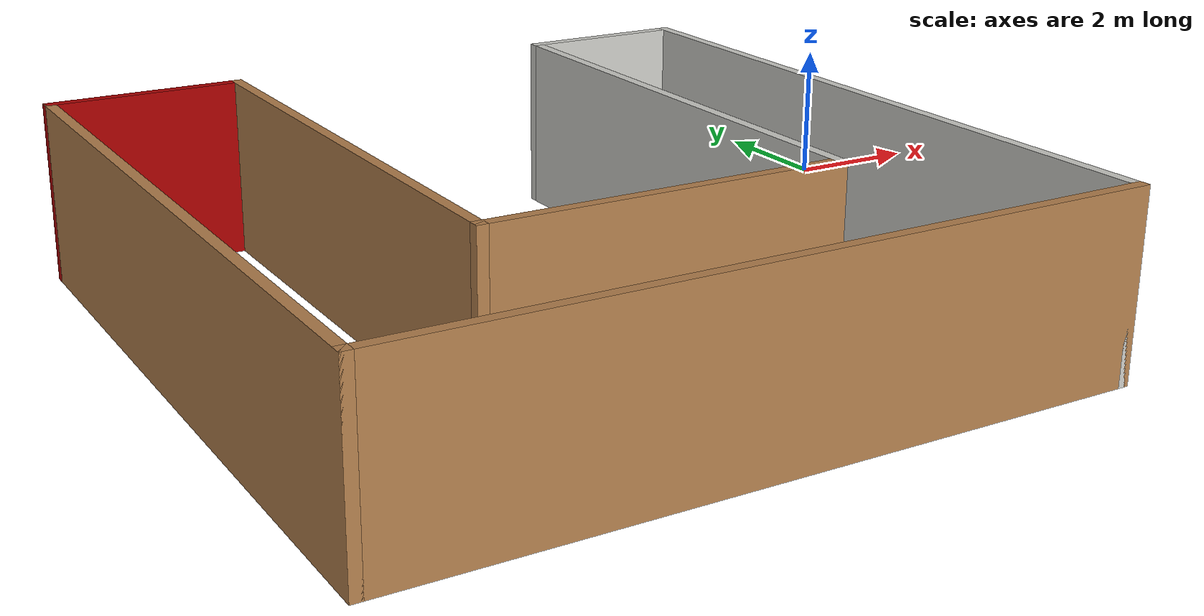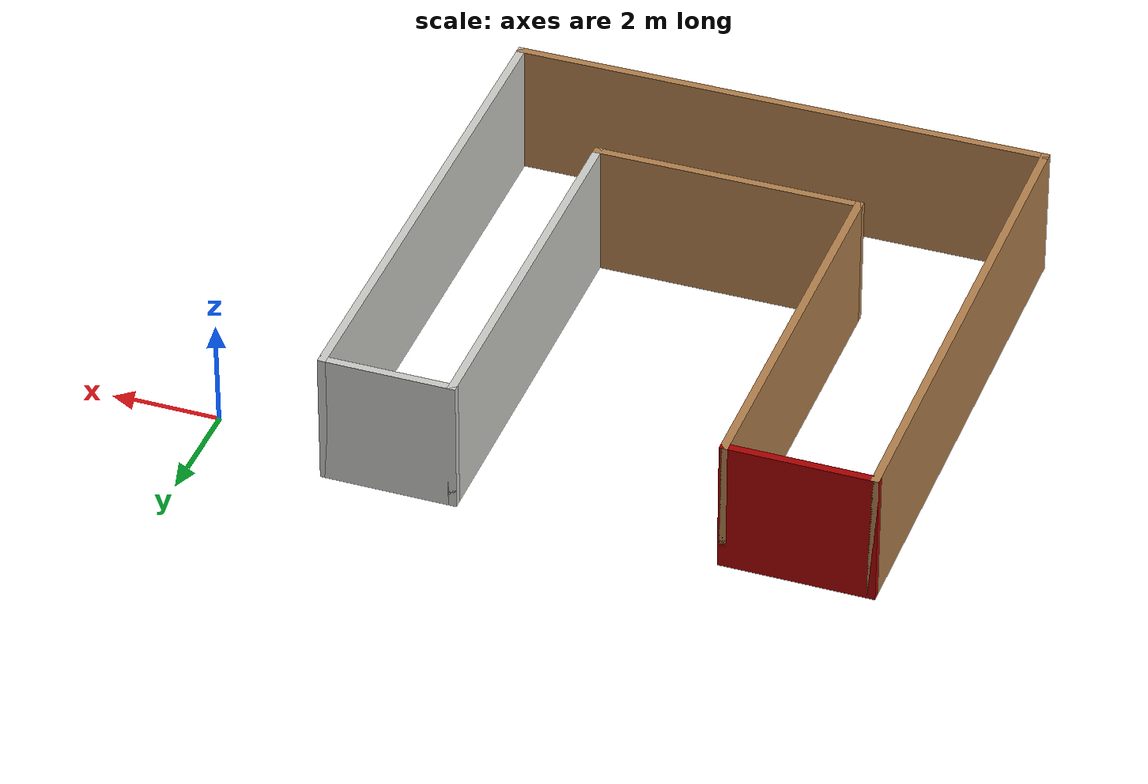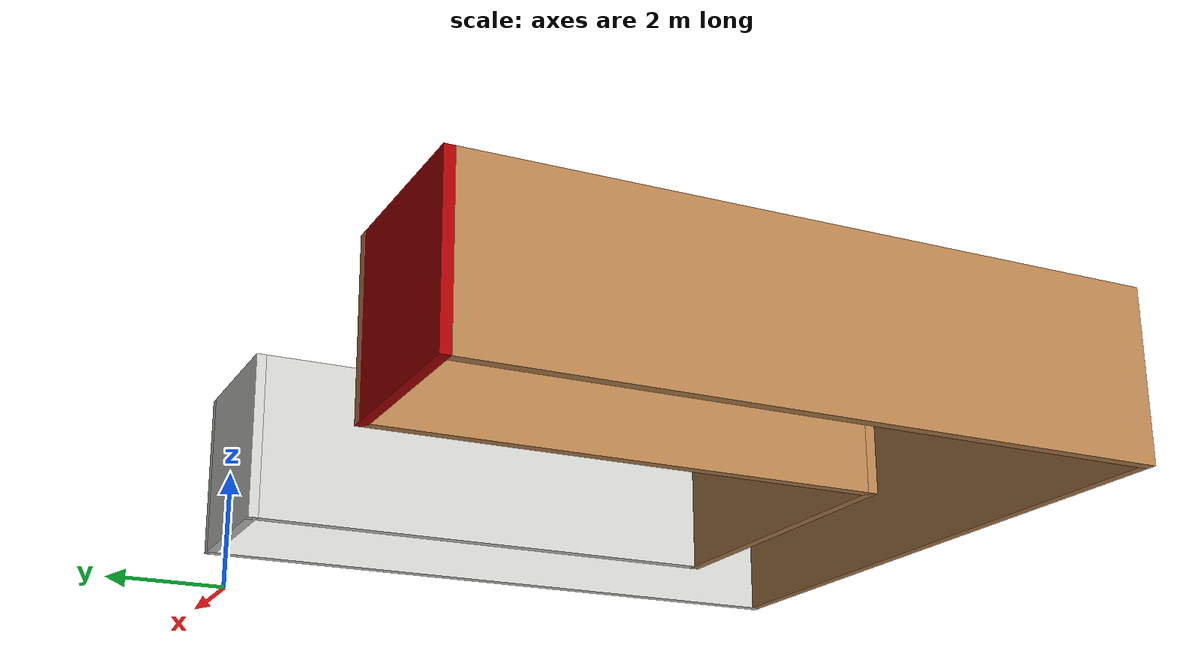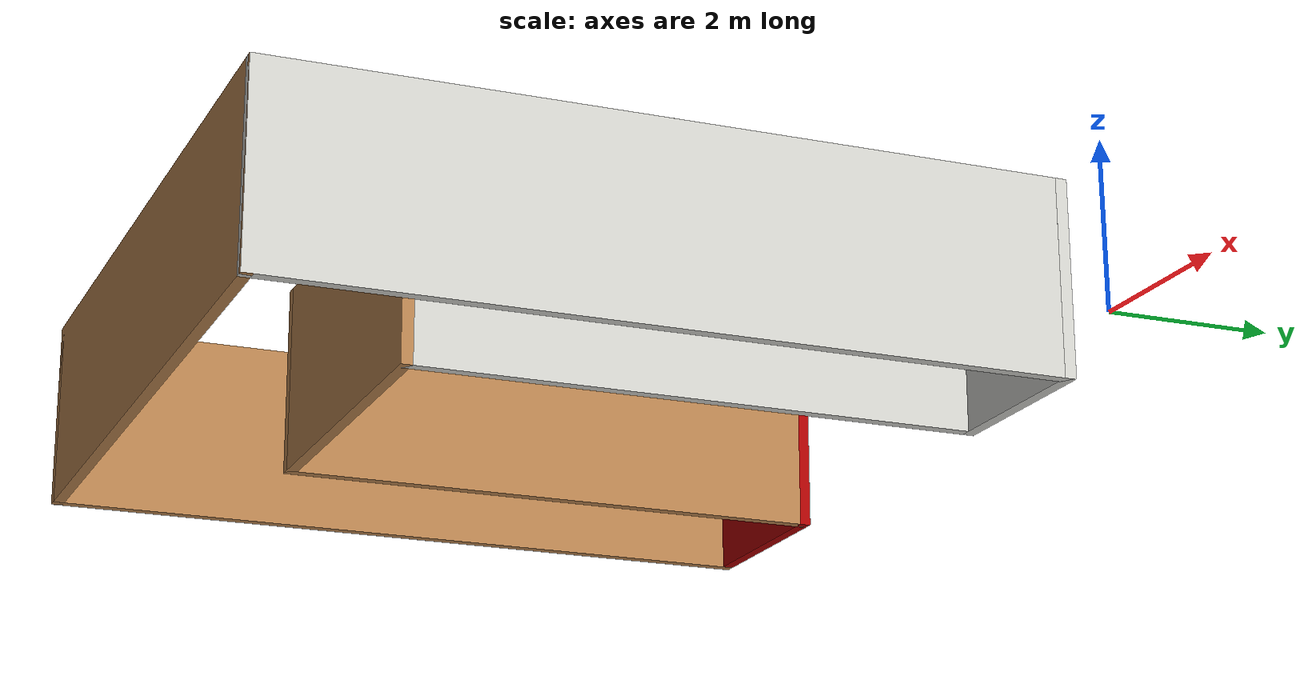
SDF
<?xml version='1.0'?>
<sdf version='1.6'>
  <model name='Mybuilding'>
    <pose frame=''>-7.24222 -4.08807 0 0 -0 0</pose>
    <link name='Wall_2'>
      <collision name='Wall_2_Collision'>
        <geometry>
          <box>
            <size>10 0.15 2.5</size>
          </box>
        </geometry>
        <pose frame=''>0 0 1.25 0 -0 0</pose>
      </collision>
      <visual name='Wall_2_Visual'>
        <pose frame=''>0 0 1.25 0 -0 0</pose>
        <geometry>
          <box>
            <size>10 0.15 2.5</size>
          </box>
        </geometry>
        <material>
          <script>
            <uri>file://media/materials/scripts/gazebo.material</uri>
            <name>Gazebo/Wood</name>
          </script>
          <ambient>0.666667 0 0 1</ambient>
        </material>
        <meta>
          <layer>0</layer>
        </meta>
      </visual>
      <pose frame=''>-4.925 0 0 0 0 -1.5708</pose>
    </link>
    <link name='Wall_3'>
      <collision name='Wall_3_Collision'>
        <geometry>
          <box>
            <size>10 0.15 2.5</size>
          </box>
        </geometry>
        <pose frame=''>0 0 1.25 0 -0 0</pose>
      </collision>
      <visual name='Wall_3_Visual'>
        <pose frame=''>0 0 1.25 0 -0 0</pose>
        <geometry>
          <box>
            <size>10 0.15 2.5</size>
          </box>
        </geometry>
        <material>
          <script>
            <uri>file://media/materials/scripts/gazebo.material</uri>
            <name>Gazebo/Wood</name>
          </script>
          <ambient>0 0 1 1</ambient>
        </material>
        <meta>
          <layer>0</layer>
        </meta>
      </visual>
      <pose frame=''>0 -4.925 0 0 -0 0</pose>
    </link>
    <link name='Wall_4'>
      <collision name='Wall_4_Collision'>
        <geometry>
          <box>
            <size>10 0.15 2.5</size>
          </box>
        </geometry>
        <pose frame=''>0 0 1.25 0 -0 0</pose>
      </collision>
      <visual name='Wall_4_Visual'>
        <pose frame=''>0 0 1.25 0 -0 0</pose>
        <geometry>
          <box>
            <size>10 0.15 2.5</size>
          </box>
        </geometry>
        <material>
          <script>
            <uri>file://media/materials/scripts/gazebo.material</uri>
            <name>Gazebo/CeilingTiled</name>
          </script>
          <ambient>0 0.666667 0 1</ambient>
        </material>
        <meta>
          <layer>0</layer>
        </meta>
      </visual>
      <pose frame=''>4.925 0 0 0 -0 1.5708</pose>
    </link>
    <link name='Wall_5'>
      <collision name='Wall_5_Collision'>
        <geometry>
          <box>
            <size>2.5 0.15 2.5</size>
          </box>
        </geometry>
        <pose frame=''>0 0 1.25 0 -0 0</pose>
      </collision>
      <visual name='Wall_5_Visual'>
        <pose frame=''>0 0 1.25 0 -0 0</pose>
        <geometry>
          <box>
            <size>2.5 0.15 2.5</size>
          </box>
        </geometry>
        <material>
          <script>
            <uri>file://media/materials/scripts/gazebo.material</uri>
            <name>Gazebo/CeilingTiled</name>
          </script>
          <ambient>0 0.666667 0 1</ambient>
        </material>
        <meta>
          <layer>0</layer>
        </meta>
      </visual>
      <pose frame=''>3.75 4.925 0 0 -0 3.14159</pose>
    </link>
    <link name='Wall_6'>
      <collision name='Wall_6_Collision'>
        <geometry>
          <box>
            <size>7.5 0.15 2.5</size>
          </box>
        </geometry>
        <pose frame=''>0 0 1.25 0 -0 0</pose>
      </collision>
      <visual name='Wall_6_Visual'>
        <pose frame=''>0 0 1.25 0 -0 0</pose>
        <geometry>
          <box>
            <size>7.5 0.15 2.5</size>
          </box>
        </geometry>
        <material>
          <script>
            <uri>file://media/materials/scripts/gazebo.material</uri>
            <name>Gazebo/CeilingTiled</name>
          </script>
          <ambient>0.333333 0.666667 0 1</ambient>
        </material>
        <meta>
          <layer>0</layer>
        </meta>
      </visual>
      <pose frame=''>2.575 1.25 0 0 0 -1.5708</pose>
    </link>
    <link name='Wall_7'>
      <collision name='Wall_7_Collision'>
        <geometry>
          <box>
            <size>5 0.15 2.5</size>
          </box>
        </geometry>
        <pose frame=''>0 0 1.25 0 -0 0</pose>
      </collision>
      <visual name='Wall_7_Visual'>
        <pose frame=''>0 0 1.25 0 -0 0</pose>
        <geometry>
          <box>
            <size>5 0.15 2.5</size>
          </box>
        </geometry>
        <material>
          <script>
            <uri>file://media/materials/scripts/gazebo.material</uri>
            <name>Gazebo/Wood</name>
          </script>
          <ambient>0 0 1 1</ambient>
        </material>
        <meta>
          <layer>0</layer>
        </meta>
      </visual>
      <pose frame=''>0.15 -2.425 0 0 -0 3.14159</pose>
    </link>
    <link name='Wall_8'>
      <collision name='Wall_8_Collision'>
        <geometry>
          <box>
            <size>7.5 0.15 2.5</size>
          </box>
        </geometry>
        <pose frame=''>0 0 1.25 0 -0 0</pose>
      </collision>
      <visual name='Wall_8_Visual'>
        <pose frame=''>0 0 1.25 0 -0 0</pose>
        <geometry>
          <box>
            <size>7.5 0.15 2.5</size>
          </box>
        </geometry>
        <material>
          <script>
            <uri>file://media/materials/scripts/gazebo.material</uri>
            <name>Gazebo/Wood</name>
          </script>
          <ambient>0.666667 0 0 1</ambient>
        </material>
        <meta>
          <layer>0</layer>
        </meta>
      </visual>
      <pose frame=''>-2.275 1.25 0 0 -0 1.5708</pose>
    </link>
    <link name='Wall_9'>
      <collision name='Wall_9_Collision'>
        <geometry>
          <box>
            <size>2.8 0.15 2.5</size>
          </box>
        </geometry>
        <pose frame=''>0 0 1.25 0 -0 0</pose>
      </collision>
      <visual name='Wall_9_Visual'>
        <pose frame=''>0 0 1.25 0 -0 0</pose>
        <geometry>
          <box>
            <size>2.8 0.15 2.5</size>
          </box>
        </geometry>
        <material>
          <script>
            <uri>file://media/materials/scripts/gazebo.material</uri>
            <name>Gazebo/Grey</name>
          </script>
          <ambient>0.666667 0 0 1</ambient>
        </material>
        <meta>
          <layer>0</layer>
        </meta>
      </visual>
      <pose frame=''>-3.6 4.925 0 0 -0 3.14159</pose>
    </link>
    <static>1</static>
  </model>
</sdf>
